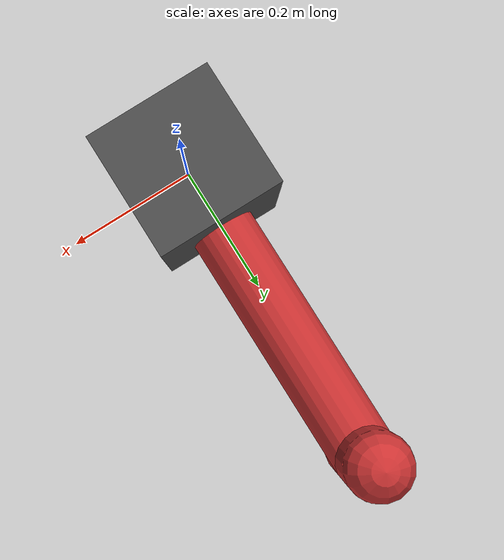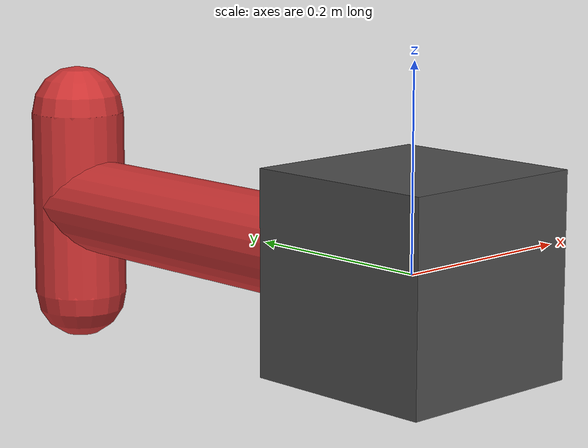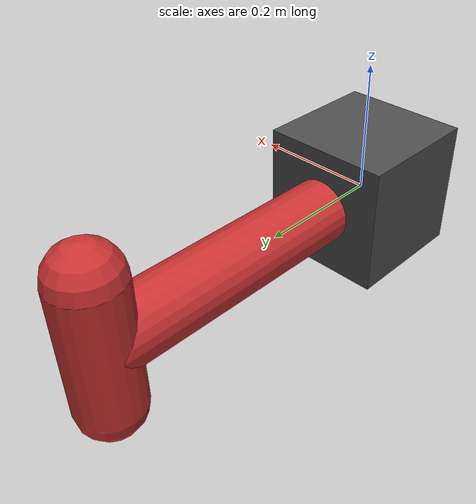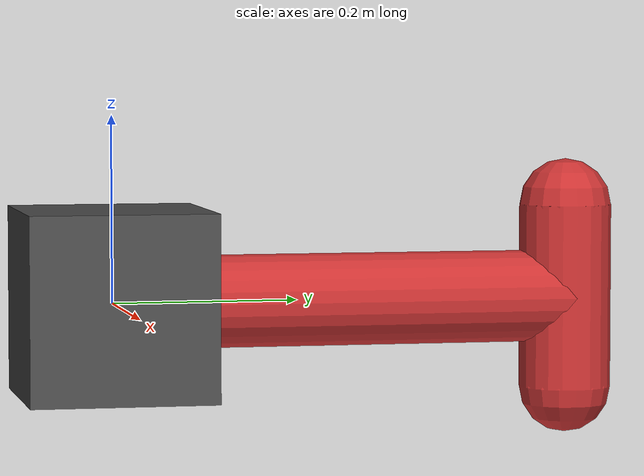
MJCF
<mujoco>
  <compiler angle="radian"/>
  <option timestep="0.01"/>

  <worldbody>
    <!-- Static base -->
    <body name="base" pos="0 0 0">
      <geom type="box" size="0.1 0.1 0.1" rgba="0.3 0.3 0.3 1"/>
    </body>

    <!-- Rotating arm (pendulum) -->
    <body name="arm" pos="0 0 0">
      <joint name="hinge" type="hinge" axis="0 1 0"/>
      <geom type="cylinder" size="0.05" fromto="0 0 0 0 0.5 0" rgba="0.8 0.2 0.2 1"/>
      <geom type="capsule" size="0.05 0.1" pos="0 0.5 0" rgba="0.8 0.2 0.2 1"/>
    </body>
  </worldbody>

  <actuator>
    <motor name="motor" joint="hinge" gear="1"/>
  </actuator>
</mujoco>
